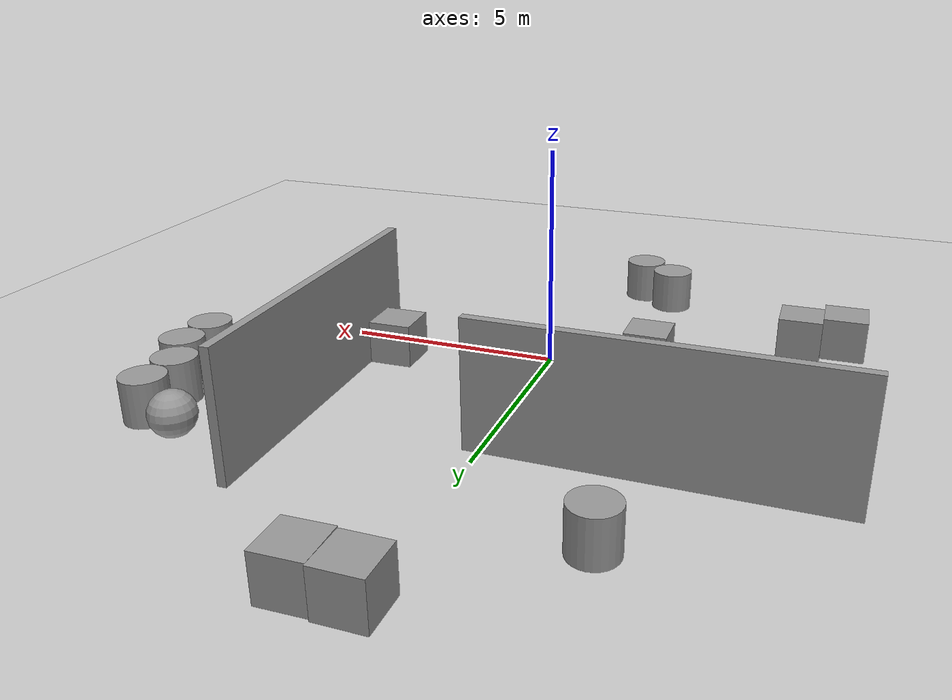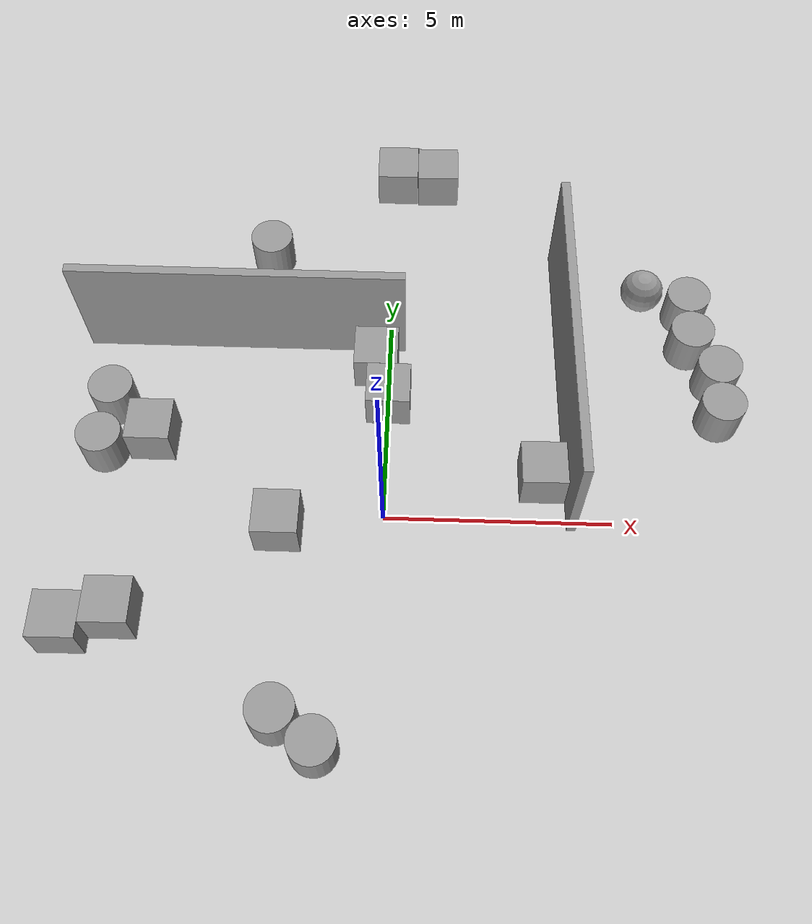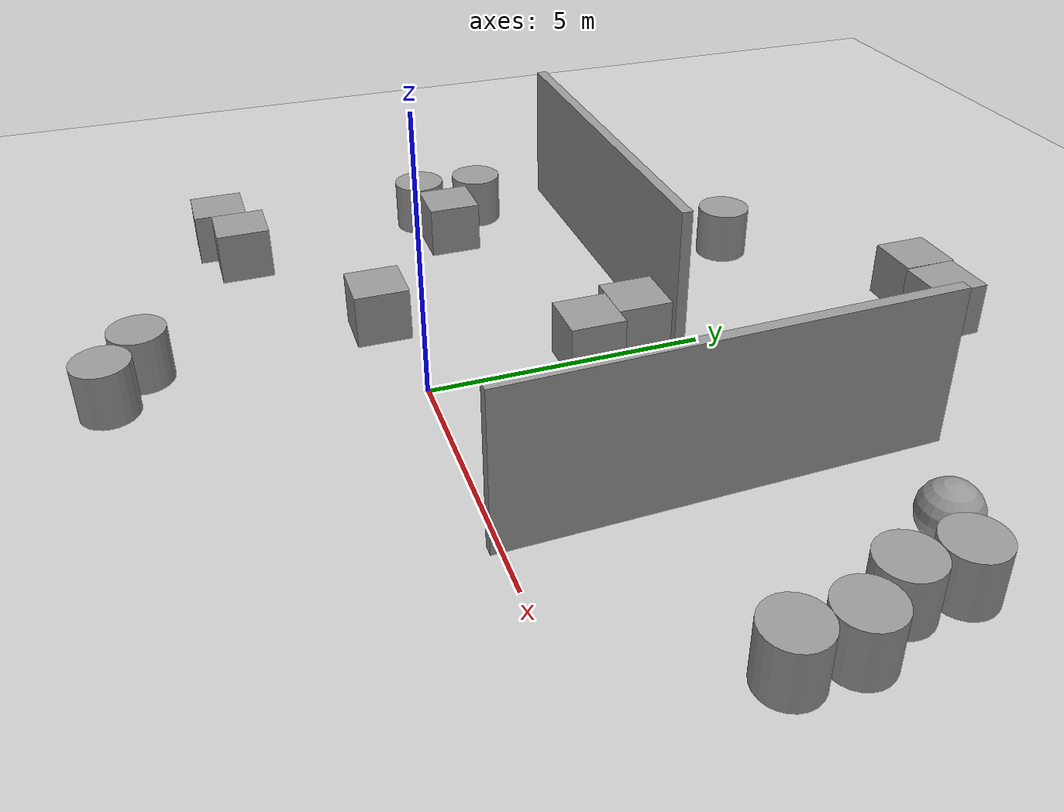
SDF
<sdf version="1.4">
 <world name="default">
  <light name="sun" type="directional">
   <pose>0 0 10 0 -0 0</pose>
   <diffuse>0.8 0.8 0.8 1</diffuse>
   <specular>0.2 0.2 0.2 1</specular>
   <attenuation>
    <range>1000</range>
    <constant>0.9</constant>
    <linear>0.01</linear>
    <quadratic>0.001</quadratic>
   </attenuation>
   <direction>-0.5 0.1 -0.9</direction>
  </light>
  <model name="ground_plane">
   <static>1</static>
   <link name="link">
    <collision name="collision">
     <geometry><plane><normal>0 0 1</normal><size>100 100</size></plane></geometry>
     <surface><friction><ode><mu>100</mu><mu2>50</mu2></ode></friction></surface>
    </collision>
    <visual name="visual">
     <cast_shadows>0</cast_shadows>
     <geometry><plane><normal>0 0 1</normal><size>100 100</size></plane></geometry>
     <material>
      <script><uri>file://media/materials/scripts/gazebo.material</uri><name>Gazebo/Grey</name></script>
     </material>
    </visual>
    <velocity_decay><linear>0</linear><angular>0</angular></velocity_decay>
   </link>
  </model>
  <physics type="ode">
   <max_step_size>0.001</max_step_size>
   <real_time_factor>1</real_time_factor>
   <real_time_update_rate>0</real_time_update_rate>
   <gravity>0 0 -9.8</gravity>
  </physics>
  <scene><ambient>0.4 0.4 0.4 1</ambient><background>0.7 0.7 0.7 1</background><shadows>1</shadows></scene>
  <spherical_coordinates>
   <surface_model>EARTH_WGS84</surface_model>
   <latitude_deg>0</latitude_deg>
   <longitude_deg>0</longitude_deg>
   <elevation>0</elevation>
   <heading_deg>0</heading_deg>
  </spherical_coordinates>
  <model name="unit_cylinder_2_0">
   <pose>-1.97166 -4.50348 0.499992 -1e-06 1e-06 0</pose>
   <link name="link">
    <inertial>
     <mass>1</mass>
     <inertia><ixx>1</ixx><ixy>0</ixy><ixz>0</ixz><iyy>1</iyy><iyz>0</iyz><izz>1</izz></inertia>
    </inertial>
    <collision name="collision">
     <geometry><cylinder><radius>0.5</radius><length>1</length></cylinder></geometry>
    </collision>
    <visual name="visual">
     <geometry><cylinder><radius>0.5</radius><length>1</length></cylinder></geometry>
     <material>
      <script><uri>file://media/materials/scripts/gazebo.material</uri><name>Gazebo/Grey</name></script>
     </material>
    </visual>
    <velocity_decay><linear>0</linear><angular>0</angular></velocity_decay>
   </link>
   <static>0</static>
  </model>
  <model name="unit_cylinder_3_0">
   <pose>7.53201 3.63667 0.499994 -1e-06 1e-06 1.5e-05</pose>
   <link name="link">
    <inertial>
     <mass>1</mass>
     <inertia><ixx>1</ixx><ixy>0</ixy><ixz>0</ixz><iyy>1</iyy><iyz>0</iyz><izz>1</izz></inertia>
    </inertial>
    <collision name="collision">
     <geometry><cylinder><radius>0.5</radius><length>1</length></cylinder></geometry>
    </collision>
    <visual name="visual">
     <geometry><cylinder><radius>0.5</radius><length>1</length></cylinder></geometry>
     <material>
      <script><uri>file://media/materials/scripts/gazebo.material</uri><name>Gazebo/Grey</name></script>
     </material>
    </visual>
    <velocity_decay><linear>0</linear><angular>0</angular></velocity_decay>
   </link>
   <static>0</static>
  </model>
  <model name="unit_cylinder_5_0">
   <pose>7.51653 2.63678 0.499992 0 -0 1.6e-05</pose>
   <link name="link">
    <inertial>
     <mass>1</mass>
     <inertia><ixx>1</ixx><ixy>0</ixy><ixz>0</ixz><iyy>1</iyy><iyz>0</iyz><izz>1</izz></inertia>
    </inertial>
    <collision name="collision">
     <geometry><cylinder><radius>0.5</radius><length>1</length></cylinder></geometry>
    </collision>
    <visual name="visual">
     <geometry><cylinder><radius>0.5</radius><length>1</length></cylinder></geometry>
     <material>
      <script><uri>file://media/materials/scripts/gazebo.material</uri><name>Gazebo/Grey</name></script>
     </material>
    </visual>
    <velocity_decay><linear>0</linear><angular>0</angular></velocity_decay>
   </link>
   <static>0</static>
  </model>
  <model name="unit_cylinder_7_0">
   <pose>-6.23191 2.65627 0.499992 0 0 -9e-06</pose>
   <link name="link">
    <inertial>
     <mass>1</mass>
     <inertia><ixx>1</ixx><ixy>0</ixy><ixz>0</ixz><iyy>1</iyy><iyz>0</iyz><izz>1</izz></inertia>
    </inertial>
    <collision name="collision">
     <geometry><cylinder><radius>0.5</radius><length>1</length></cylinder></geometry>
    </collision>
    <visual name="visual">
     <geometry><cylinder><radius>0.5</radius><length>1</length></cylinder></geometry>
     <material>
      <script><uri>file://media/materials/scripts/gazebo.material</uri><name>Gazebo/Grey</name></script>
     </material>
    </visual>
    <velocity_decay><linear>0</linear><angular>0</angular></velocity_decay>
   </link>
   <static>0</static>
  </model>
  <model name="unit_cylinder_8_0">
   <pose>-3 7 0.499992 0 -0 0</pose>
   <link name="link">
    <inertial>
     <mass>1</mass>
     <inertia><ixx>1</ixx><ixy>0</ixy><ixz>0</ixz><iyy>1</iyy><iyz>0</iyz><izz>1</izz></inertia>
    </inertial>
    <collision name="collision">
     <geometry><cylinder><radius>0.5</radius><length>1</length></cylinder></geometry>
    </collision>
    <visual name="visual">
     <geometry><cylinder><radius>0.5</radius><length>1</length></cylinder></geometry>
     <material>
      <script><uri>file://media/materials/scripts/gazebo.material</uri><name>Gazebo/Grey</name></script>
     </material>
    </visual>
    <velocity_decay><linear>0</linear><angular>0</angular></velocity_decay>
   </link>
   <static>0</static>
  </model>
  <model name="unit_box_6_0">
   <pose>1.01278 9.48039 0.5 0 -0 0.025068</pose>
   <link name="link">
    <inertial>
     <mass>1</mass>
     <inertia><ixx>1</ixx><ixy>0</ixy><ixz>0</ixz><iyy>1</iyy><iyz>0</iyz><izz>1</izz></inertia>
    </inertial>
    <collision name="collision"><geometry><box><size>1 1 1</size></box></geometry></collision>
    <visual name="visual">
     <geometry><box><size>1 1 1</size></box></geometry>
     <material>
      <script><uri>file://media/materials/scripts/gazebo.material</uri><name>Gazebo/Grey</name></script>
     </material>
    </visual>
    <velocity_decay><linear>0</linear><angular>0</angular></velocity_decay>
   </link>
   <static>0</static>
  </model>
  <model name="unit_box_7">
   <pose>-0.309217 3.89949 0.5 0 -0 0.001411</pose>
   <link name="link">
    <inertial>
     <mass>1</mass>
     <inertia><ixx>1</ixx><ixy>0</ixy><ixz>0</ixz><iyy>1</iyy><iyz>0</iyz><izz>1</izz></inertia>
    </inertial>
    <collision name="collision"><geometry><box><size>1 1 1</size></box></geometry></collision>
    <visual name="visual">
     <geometry><box><size>1 1 1</size></box></geometry>
     <material>
      <script><uri>file://media/materials/scripts/gazebo.material</uri><name>Gazebo/Grey</name></script>
     </material>
    </visual>
    <velocity_decay><linear>0</linear><angular>0</angular></velocity_decay>
   </link>
   <static>0</static>
  </model>
  <model name="unit_sphere_1">
   <pose>6 6 0.5 0 -0 0</pose>
   <link name="link">
    <inertial>
     <mass>1</mass>
     <inertia><ixx>1</ixx><ixy>0</ixy><ixz>0</ixz><iyy>1</iyy><iyz>0</iyz><izz>1</izz></inertia>
    </inertial>
    <collision name="collision"><geometry><sphere><radius>0.5</radius></sphere></geometry></collision>
    <visual name="visual">
     <geometry><sphere><radius>0.5</radius></sphere></geometry>
     <material>
      <script><uri>file://media/materials/scripts/gazebo.material</uri><name>Gazebo/Grey</name></script>
     </material>
    </visual>
    <velocity_decay><linear>0</linear><angular>0</angular></velocity_decay>
   </link>
   <static>0</static>
  </model>
  <model name="unit_cylinder_12">
   <pose>-1.12836 -5.09186 0.499998 1e-06 -1e-06 -0.001434</pose>
   <link name="link">
    <inertial>
     <mass>1</mass>
     <inertia><ixx>1</ixx><ixy>0</ixy><ixz>0</ixz><iyy>1</iyy><iyz>0</iyz><izz>1</izz></inertia>
    </inertial>
    <collision name="collision">
     <geometry><cylinder><radius>0.5</radius><length>1</length></cylinder></geometry>
    </collision>
    <visual name="visual">
     <geometry><cylinder><radius>0.5</radius><length>1</length></cylinder></geometry>
     <material>
      <script><uri>file://media/materials/scripts/gazebo.material</uri><name>Gazebo/Grey</name></script>
     </material>
    </visual>
    <velocity_decay><linear>0</linear><angular>0</angular></velocity_decay>
   </link>
   <static>0</static>
  </model>
  <model name="unit_cylinder_14">
   <pose>-6.30255 1.42328 0.499992 0 -0 0.003868</pose>
   <link name="link">
    <inertial>
     <mass>1</mass>
     <inertia><ixx>1</ixx><ixy>0</ixy><ixz>0</ixz><iyy>1</iyy><iyz>0</iyz><izz>1</izz></inertia>
    </inertial>
    <collision name="collision">
     <geometry><cylinder><radius>0.5</radius><length>1</length></cylinder></geometry>
    </collision>
    <visual name="visual">
     <geometry><cylinder><radius>0.5</radius><length>1</length></cylinder></geometry>
     <material>
      <script><uri>file://media/materials/scripts/gazebo.material</uri><name>Gazebo/Grey</name></script>
     </material>
    </visual>
    <velocity_decay><linear>0</linear><angular>0</angular></velocity_decay>
   </link>
   <static>0</static>
  </model>
  <model name="unit_box_1">
   <pose>-6.4772 -2.75825 0.5 0 -0 0.010411</pose>
   <link name="link">
    <inertial>
     <mass>1</mass>
     <inertia><ixx>1</ixx><ixy>0</ixy><ixz>0</ixz><iyy>1</iyy><iyz>0</iyz><izz>1</izz></inertia>
    </inertial>
    <collision name="collision"><geometry><box><size>1 1 1</size></box></geometry></collision>
    <visual name="visual">
     <geometry><box><size>1 1 1</size></box></geometry>
     <material>
      <script><uri>file://media/materials/scripts/gazebo.material</uri><name>Gazebo/Grey</name></script>
     </material>
    </visual>
    <velocity_decay><linear>0</linear><angular>0</angular></velocity_decay>
   </link>
   <static>0</static>
  </model>
  <model name="unit_box_2">
   <pose>-5.2386 1.79388 0.5 0 -0 0</pose>
   <link name="link">
    <inertial>
     <mass>1</mass>
     <inertia><ixx>1</ixx><ixy>0</ixy><ixz>0</ixz><iyy>1</iyy><iyz>0</iyz><izz>1</izz></inertia>
    </inertial>
    <collision name="collision"><geometry><box><size>1 1 1</size></box></geometry></collision>
    <visual name="visual">
     <geometry><box><size>1 1 1</size></box></geometry>
     <material>
      <script><uri>file://media/materials/scripts/gazebo.material</uri><name>Gazebo/Grey</name></script>
     </material>
    </visual>
    <velocity_decay><linear>0</linear><angular>0</angular></velocity_decay>
   </link>
   <static>0</static>
  </model>
  <model name="grey_wall">
   <static>1</static>
   <link name="link">
    <pose>0 0 1.4 0 -0 0</pose>
    <collision name="collision"><geometry><box><size>7.5 0.2 2.8</size></box></geometry></collision>
    <visual name="visual">
     <cast_shadows>0</cast_shadows>
     <geometry><box><size>7.5 0.2 2.8</size></box></geometry>
     <material>
      <script>
       <uri>model://grey_wall/materials/scripts</uri>
       <uri>model://grey_wall/materials/textures</uri>
       <name>vrc/grey_wall</name>
      </script>
     </material>
    </visual>
    <velocity_decay><linear>0</linear><angular>0</angular></velocity_decay>
   </link>
   <pose>4.01832 3.58182 0 0 -0 1.59162</pose>
  </model>
  <model name="grey_wall_0">
   <static>1</static>
   <link name="link">
    <pose>0 0 1.4 0 -0 0</pose>
    <collision name="collision"><geometry><box><size>7.5 0.2 2.8</size></box></geometry></collision>
    <visual name="visual">
     <cast_shadows>0</cast_shadows>
     <geometry><box><size>7.5 0.2 2.8</size></box></geometry>
     <material>
      <script>
       <uri>model://grey_wall/materials/scripts</uri>
       <uri>model://grey_wall/materials/textures</uri>
       <name>vrc/grey_wall</name>
      </script>
     </material>
    </visual>
    <velocity_decay><linear>0</linear><angular>0</angular></velocity_decay>
   </link>
   <pose>-3.41032 4.50021 0 0 -0 0</pose>
  </model>
  <model name="unit_box_1_0">
   <pose>0.005748 2.89969 0.5 0 -0 0.002485</pose>
   <link name="link">
    <inertial>
     <mass>1</mass>
     <inertia><ixx>1</ixx><ixy>0</ixy><ixz>0</ixz><iyy>1</iyy><iyz>0</iyz><izz>1</izz></inertia>
    </inertial>
    <collision name="collision"><geometry><box><size>1 1 1</size></box></geometry></collision>
    <visual name="visual">
     <geometry><box><size>1 1 1</size></box></geometry>
     <material>
      <script><uri>file://media/materials/scripts/gazebo.material</uri><name>Gazebo/Grey</name></script>
     </material>
    </visual>
    <velocity_decay><linear>0</linear><angular>0</angular></velocity_decay>
   </link>
   <static>0</static>
  </model>
  <model name="unit_box_2_0">
   <pose>-5.48064 -2.41871 0.5 0 -0 0.010413</pose>
   <link name="link">
    <inertial>
     <mass>1</mass>
     <inertia><ixx>1</ixx><ixy>0</ixy><ixz>0</ixz><iyy>1</iyy><iyz>0</iyz><izz>1</izz></inertia>
    </inertial>
    <collision name="collision"><geometry><box><size>1 1 1</size></box></geometry></collision>
    <visual name="visual">
     <geometry><box><size>1 1 1</size></box></geometry>
     <material>
      <script><uri>file://media/materials/scripts/gazebo.material</uri><name>Gazebo/Grey</name></script>
     </material>
    </visual>
    <velocity_decay><linear>0</linear><angular>0</angular></velocity_decay>
   </link>
   <static>0</static>
  </model>
  <model name="unit_cylinder_1">
   <pose>7 4.57612 0.499998 1e-06 -0 -1e-06</pose>
   <link name="link">
    <inertial>
     <mass>1</mass>
     <inertia><ixx>1</ixx><ixy>0</ixy><ixz>0</ixz><iyy>1</iyy><iyz>0</iyz><izz>1</izz></inertia>
    </inertial>
    <collision name="collision">
     <geometry><cylinder><radius>0.5</radius><length>1</length></cylinder></geometry>
    </collision>
    <visual name="visual">
     <geometry><cylinder><radius>0.5</radius><length>1</length></cylinder></geometry>
     <material>
      <script><uri>file://media/materials/scripts/gazebo.material</uri><name>Gazebo/Grey</name></script>
     </material>
    </visual>
    <velocity_decay><linear>0</linear><angular>0</angular></velocity_decay>
   </link>
   <static>0</static>
  </model>
  <model name="unit_cylinder_2">
   <pose>6.99999 5.57612 0.499999 1e-06 -0 -6e-06</pose>
   <link name="link">
    <inertial>
     <mass>1</mass>
     <inertia><ixx>1</ixx><ixy>0</ixy><ixz>0</ixz><iyy>1</iyy><iyz>0</iyz><izz>1</izz></inertia>
    </inertial>
    <collision name="collision">
     <geometry><cylinder><radius>0.5</radius><length>1</length></cylinder></geometry>
    </collision>
    <visual name="visual">
     <geometry><cylinder><radius>0.5</radius><length>1</length></cylinder></geometry>
     <material>
      <script><uri>file://media/materials/scripts/gazebo.material</uri><name>Gazebo/Grey</name></script>
     </material>
    </visual>
    <velocity_decay><linear>0</linear><angular>0</angular></velocity_decay>
   </link>
   <static>0</static>
  </model>
  <model name="unit_box_3">
   <pose>3.47228 0.978683 0.5 0 -0 0.020774</pose>
   <link name="link">
    <inertial>
     <mass>1</mass>
     <inertia><ixx>1</ixx><ixy>0</ixy><ixz>0</ixz><iyy>1</iyy><iyz>0</iyz><izz>1</izz></inertia>
    </inertial>
    <collision name="collision"><geometry><box><size>1 1 1</size></box></geometry></collision>
    <visual name="visual">
     <geometry><box><size>1 1 1</size></box></geometry>
     <material>
      <script><uri>file://media/materials/scripts/gazebo.material</uri><name>Gazebo/Grey</name></script>
     </material>
    </visual>
    <velocity_decay><linear>0</linear><angular>0</angular></velocity_decay>
   </link>
   <static>0</static>
  </model>
  <model name="unit_box_4">
   <pose>0.001901 9.50835 0.5 0 -0 0.004283</pose>
   <link name="link">
    <inertial>
     <mass>1</mass>
     <inertia><ixx>1</ixx><ixy>0</ixy><ixz>0</ixz><iyy>1</iyy><iyz>0</iyz><izz>1</izz></inertia>
    </inertial>
    <collision name="collision"><geometry><box><size>1 1 1</size></box></geometry></collision>
    <visual name="visual">
     <geometry><box><size>1 1 1</size></box></geometry>
     <material>
      <script><uri>file://media/materials/scripts/gazebo.material</uri><name>Gazebo/Grey</name></script>
     </material>
    </visual>
    <velocity_decay><linear>0</linear><angular>0</angular></velocity_decay>
   </link>
   <static>0</static>
  </model>
  <model name="unit_box_5">
   <pose>-2.24603 -0.354906 0.5 0 -0 0</pose>
   <link name="link">
    <inertial>
     <mass>1</mass>
     <inertia><ixx>1</ixx><ixy>0</ixy><ixz>0</ixz><iyy>1</iyy><iyz>0</iyz><izz>1</izz></inertia>
    </inertial>
    <collision name="collision"><geometry><box><size>1 1 1</size></box></geometry></collision>
    <visual name="visual">
     <geometry><box><size>1 1 1</size></box></geometry>
     <material>
      <script><uri>file://media/materials/scripts/gazebo.material</uri><name>Gazebo/Grey</name></script>
     </material>
    </visual>
    <velocity_decay><linear>0</linear><angular>0</angular></velocity_decay>
   </link>
   <static>0</static>
  </model>
 </world>
</sdf>
